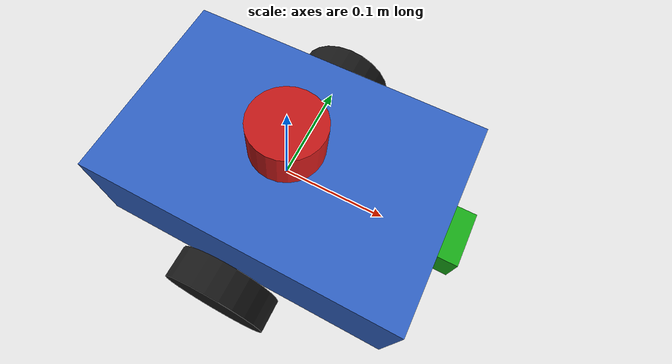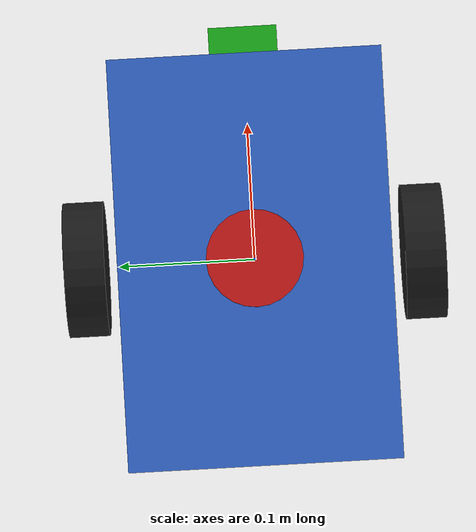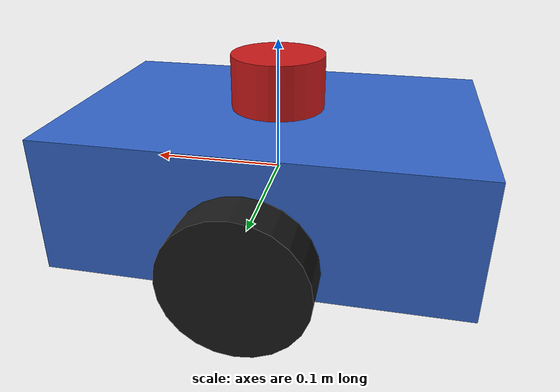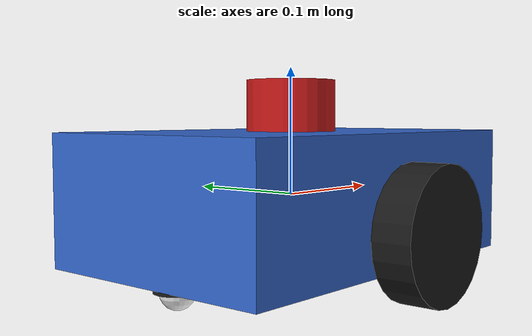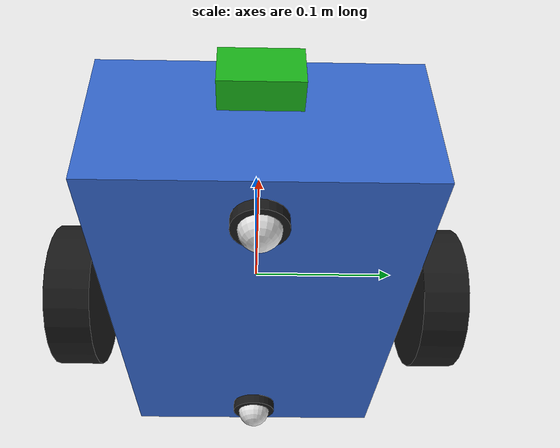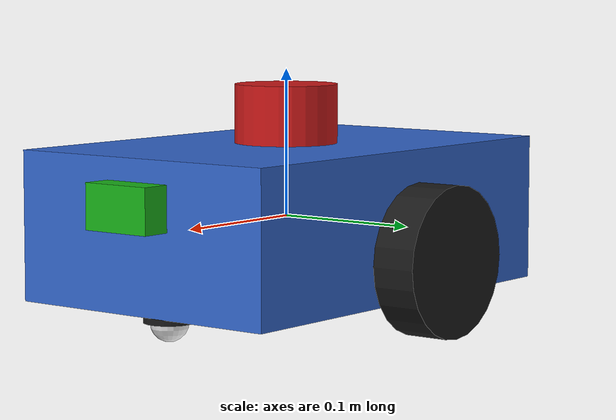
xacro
<?xml version="1.0"?>
<robot name="mi_robot" xmlns:xacro="http://www.ros.org/wiki/xacro">

  <!-- ===== Parámetros: se cambian aquí y se actualizan en todo el archivo ===== -->
  <xacro:property name="chasis_largo" value="0.30"/>
  <xacro:property name="chasis_ancho" value="0.20"/>
  <xacro:property name="chasis_alto" value="0.10"/>
  <xacro:property name="chasis_masa" value="1.5"/>

  <xacro:property name="rueda_radio" value="0.05"/>
  <xacro:property name="rueda_ancho" value="0.03"/>
  <xacro:property name="rueda_masa" value="0.2"/>
  <xacro:property name="separacion_ruedas" value="0.25"/>

  <xacro:property name="caster_radio" value="0.0127"/>
  <xacro:property name="caster_masa" value="0.0185"/>

  <!-- ===== Fórmulas de inercia de sólidos ===== -->
  <xacro:macro name="inercia_caja" params="m x y z">
    <inertial>
      <mass value="${m}"/>
      <inertia ixx="${m*(y*y+z*z)/12}" ixy="0" ixz="0"
               iyy="${m*(x*x+z*z)/12}" iyz="0"
               izz="${m*(x*x+y*y)/12}"/>
    </inertial>
  </xacro:macro>

  <xacro:macro name="inercia_cilindro" params="m r h">
    <inertial>
      <mass value="${m}"/>
      <inertia ixx="${m*(3*r*r+h*h)/12}" ixy="0" ixz="0"
               iyy="${m*(3*r*r+h*h)/12}" iyz="0"
               izz="${m*r*r/2}"/>
    </inertial>
  </xacro:macro>

  <xacro:macro name="inercia_esfera" params="m r">
    <inertial>
      <mass value="${m}"/>
      <inertia ixx="${2*m*r*r/5}" ixy="0" ixz="0"
               iyy="${2*m*r*r/5}" iyz="0"
               izz="${2*m*r*r/5}"/>
    </inertial>
  </xacro:macro>

  <!-- ===== Chasis ===== -->
  <link name="base_link">
    <visual>
      <geometry><box size="${chasis_largo} ${chasis_ancho} ${chasis_alto}"/></geometry>
      <material name="azul"><color rgba="0.2 0.4 0.8 1"/></material>
    </visual>
    <collision>
      <geometry><box size="${chasis_largo} ${chasis_ancho} ${chasis_alto}"/></geometry>
    </collision>
    <xacro:inercia_caja m="${chasis_masa}" x="${chasis_largo}" y="${chasis_ancho}" z="${chasis_alto}"/>
  </link>

  <!-- ===== Plantilla de rueda (se usa dos veces: izquierda y derecha) ===== -->
  <xacro:macro name="rueda" params="prefijo y_signo">
    <link name="rueda_${prefijo}">
      <visual>
        <geometry><cylinder radius="${rueda_radio}" length="${rueda_ancho}"/></geometry>
        <material name="negro"><color rgba="0.1 0.1 0.1 1"/></material>
      </visual>
      <collision>
        <geometry><cylinder radius="${rueda_radio}" length="${rueda_ancho}"/></geometry>
      </collision>
      <xacro:inercia_cilindro m="${rueda_masa}" r="${rueda_radio}" h="${rueda_ancho}"/>
    </link>

    <joint name="joint_rueda_${prefijo}" type="continuous">
      <parent link="base_link"/>
      <child link="rueda_${prefijo}"/>
      <!-- rpy = -90°: el eje de la rueda apunta a +y, así un giro positivo hace avanzar en +x -->
      <origin xyz="0 ${y_signo * separacion_ruedas/2} -0.02" rpy="-1.5708 0 0"/>
      <axis xyz="0 0 1"/>
    </joint>

    <!-- Fricción alta: la rueda agarra el piso y no patina -->
    <gazebo reference="rueda_${prefijo}">
      <mu1>1.0</mu1>
      <mu2>1.0</mu2>
    </gazebo>
  </xacro:macro>

  <xacro:rueda prefijo="izq" y_signo="1"/>
  <xacro:rueda prefijo="der" y_signo="-1"/>

  <!-- ===== Casters: apoyos adelante y atrás para que el chasis no se incline ===== -->
  <xacro:macro name="caster" params="prefijo x">
    <link name="caster_${prefijo}">

      <visual>
        <geometry><sphere radius="${caster_radio}"/></geometry>
        <material name="blanco"><color rgba="0.9 0.9 0.9 1"/></material>
      </visual>

      <visual>
        <origin xyz="0 0 0.01" rpy="0 0 0"/>
        <geometry><cylinder radius="0.017" length="0.02"/></geometry>
        <material name="negro"><color rgba="0.1 0.1 0.1 1"/></material>
      </visual>
      <collision>
        <geometry><sphere radius="${caster_radio}"/></geometry>
      </collision>
      <xacro:inercia_esfera m="${caster_masa}" r="${caster_radio}"/>
    </link>
    <joint name="joint_caster_${prefijo}" type="fixed">
      <parent link="base_link"/>
      <child link="caster_${prefijo}"/>
      <!-- El fondo de la esfera queda a la misma altura que el fondo de las ruedas -->
      <origin xyz="${x} 0 ${-0.02 - rueda_radio + caster_radio}" rpy="0 0 0"/>
    </joint>
    <!-- Sin fricción: la esfera se desliza y no frena al robot -->
    <gazebo reference="caster_${prefijo}">
      <mu1>0.0</mu1>
      <mu2>0.0</mu2>
    </gazebo>
  </xacro:macro>

  <xacro:caster prefijo="del" x="0.12"/>
  <xacro:caster prefijo="tra" x="-0.12"/>

  <!-- ===== LiDAR ===== -->
  <link name="lidar_link">
    <visual>
      <geometry><cylinder radius="0.035" length="0.04"/></geometry>
      <material name="rojo"><color rgba="0.8 0.1 0.1 1"/></material>
    </visual>
    <collision>
      <geometry><cylinder radius="0.035" length="0.04"/></geometry>
    </collision>
    <xacro:inercia_cilindro m="0.17" r="0.035" h="0.04"/>
  </link>
  <joint name="joint_lidar" type="fixed">
    <parent link="base_link"/>
    <child link="lidar_link"/>
    <!-- Centrado encima del chasis: ve 360° sin que el propio robot le tape los rayos -->
    <origin xyz="0 0 0.07" rpy="0 0 0"/>
  </joint>

  <gazebo reference="lidar_link">
    <sensor name="lidar" type="gpu_lidar">
      <gz_frame_id>lidar_link</gz_frame_id>   <!-- frame que aparece en el mensaje /scan -->
      <topic>scan</topic>
      <update_rate>10</update_rate>          <!-- 10 Hz -->
      <always_on>true</always_on>
      <visualize>true</visualize>
      <lidar>
        <scan>
          <horizontal>
            <samples>360</samples>           <!-- 360 muestras = 1 por grado -->
            <resolution>1</resolution>
            <min_angle>-3.14159</min_angle>  <!-- FOV de 360° -->
            <max_angle>3.14159</max_angle>
          </horizontal>
        </scan>
        <range>
          <min>0.15</min>                    <!-- rango mínimo [m] -->
          <max>12.0</max>                    <!-- rango máximo [m] -->
          <resolution>0.01</resolution>
        </range>
        <noise>                              <!-- ruido de medición, como un sensor real -->
          <type>gaussian</type>
          <mean>0.0</mean>
          <stddev>0.01</stddev>
        </noise>
      </lidar>
    </sensor>
  </gazebo>

  <!-- ===== Cámara ===== -->
  <link name="camera_link">
    <visual>
      <geometry><box size="0.02 0.05 0.03"/></geometry>
      <material name="verde"><color rgba="0.1 0.7 0.1 1"/></material>
    </visual>
    <collision>
      <geometry><box size="0.02 0.05 0.03"/></geometry>
    </collision>
    <xacro:inercia_caja m="0.03" x="0.02" y="0.05" z="0.03"/>
  </link>
  <joint name="joint_camara" type="fixed">
    <parent link="base_link"/>
    <child link="camera_link"/>
    <!-- En la cara frontal del chasis, mirando hacia adelante (+x) -->
    <origin xyz="0.16 0 0.02" rpy="0 0 0"/>
  </joint>

  <!-- Frame óptico: las imágenes usan z hacia adelante, x a la derecha, y hacia abajo -->
  <link name="camera_optical_link"/>
  <joint name="joint_camara_optica" type="fixed">
    <parent link="camera_link"/>
    <child link="camera_optical_link"/>
    <origin xyz="0 0 0" rpy="-1.5708 0 -1.5708"/>
  </joint>

  <gazebo reference="camera_link">
    <sensor name="camara" type="camera">
      <gz_frame_id>camera_optical_link</gz_frame_id>
      <topic>image_raw</topic>               <!-- camera_info sale solo en /camera_info -->
      <update_rate>30</update_rate>          <!-- 30 FPS -->
      <always_on>true</always_on>
      <camera>
        <horizontal_fov>1.0856</horizontal_fov>
        <image>
          <width>640</width>
          <height>480</height>
          <format>R8G8B8</format>
        </image>
        <clip>
          <near>0.05</near>
          <far>20.0</far>
        </clip>
      </camera>
    </sensor>
  </gazebo>

  <!-- ===== Plugins de Gazebo ===== -->
  <gazebo>
    <!-- DiffDrive: recibe la velocidad (/cmd_vel), hace girar las ruedas
         y publica la odometría (/odom) y la transformación odom -> base_link (/tf) -->
    <plugin filename="gz-sim-diff-drive-system" name="gz::sim::systems::DiffDrive">
      <left_joint>joint_rueda_izq</left_joint>
      <right_joint>joint_rueda_der</right_joint>
      <wheel_separation>${separacion_ruedas}</wheel_separation>
      <wheel_radius>${rueda_radio}</wheel_radius>
      <odom_publish_frequency>30</odom_publish_frequency>
      <topic>/cmd_vel</topic>
      <odom_topic>/odom</odom_topic>
      <tf_topic>/tf</tf_topic>
      <frame_id>odom</frame_id>
      <child_frame_id>base_link</child_frame_id>
    </plugin>

    <!-- JointStatePublisher: publica cuánto y qué tan rápido gira cada rueda.
         Lo necesitamos después para el nodo de cinemática (/joint_states) -->
    <plugin filename="gz-sim-joint-state-publisher-system"
            name="gz::sim::systems::JointStatePublisher"/>
  </gazebo>

</robot>
